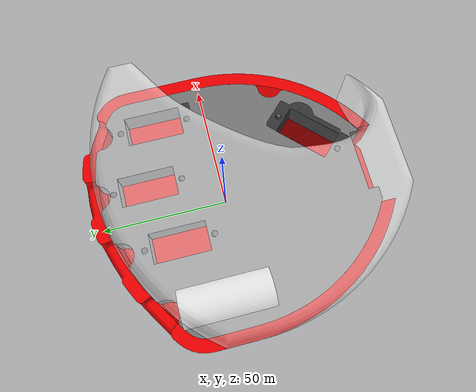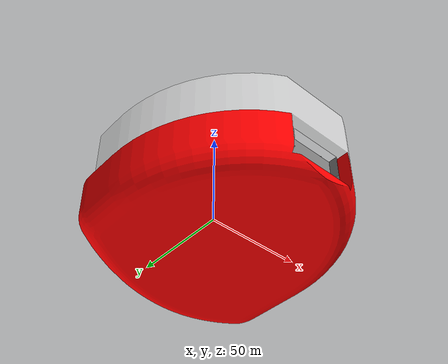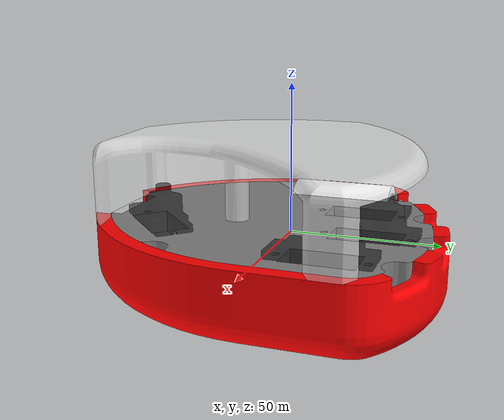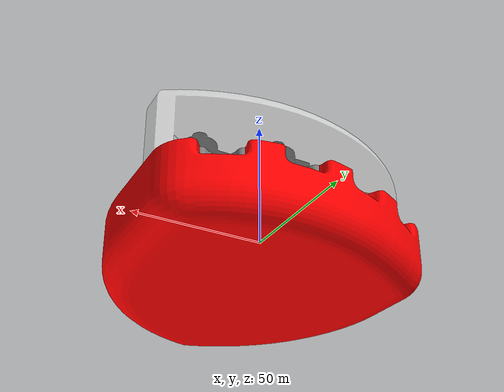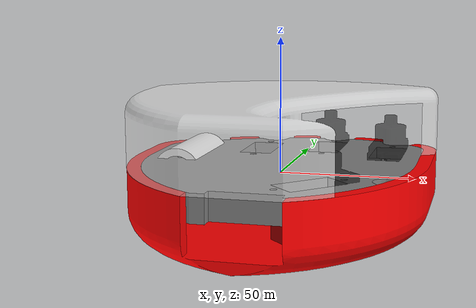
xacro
<?xml version="1.0"?>
<robot xmlns:xacro="http://www.ros.org/wiki/xacro" name="hands_one">

  <xacro:include filename="$(find hands_one)/urdf/finger_hands_one.xacro"/>
  <xacro:little_finger name="little_finger" parent="PalmMid_link" xyz="-37.5 8.75 0" rpy="0 0 0"/>

  <!-- Palm Mid link -->
  <link name="PalmMid_link">
    <visual>
      <geometry>
        <mesh filename="package://hands_one/meshes/PalmMid.stl" scale="1 1 1"/>
      </geometry>
      <material name="gray">
        <color rgba="0.5 0.5 0.5 1"/>
      </material>
    </visual>
    <collision>
      <geometry>
        <mesh filename="package://hands_one/meshes/PalmMid.stl" scale="1 1 1"/>
      </geometry>
    </collision>
    <inertial>
      <mass value="0.5"/>
      <origin xyz="0 0 0" rpy="0 0 0"/>
      <inertia ixx="0.001" ixy="0" ixz="0" iyy="0.001" iyz="0" izz="0.001"/>
    </inertial>
  </link>

  <!-- Palm Back link -->
  <link name="PalmBackCover_link">
    <visual>
      <geometry>
        <mesh filename="package://hands_one/meshes/PalmBackCoverUpdated.stl" scale="1 1 1"/>
      </geometry>
      <material name="red">
        <color rgba="1 0 0 1"/>
      </material>
    </visual>
    <collision>
      <geometry>
        <mesh filename="package://hands_one/meshes/PalmBackCoverUpdated.stl" scale="1 1 1"/>
      </geometry>
    </collision>
    <inertial>
      <mass value="0.1"/>
      <origin xyz="0 0 0" rpy="0 0 0"/>
      <inertia ixx="0.0001" ixy="0" ixz="0" iyy="0.0001" iyz="0" izz="0.0001"/>
    </inertial>
  </link>

  <!-- Palm Front link -->
  <link name="PalmFrontCover_link">
    <visual>
      <geometry>
        <mesh filename="package://hands_one/meshes/PalmFrontCover.stl" scale="1 1 1"/>
      </geometry>
      <material name="white">
        <color rgba="1 1 1 0.5"/>
      </material>
    </visual>
    <collision>
      <geometry>
        <mesh filename="package://hands_one/meshes/PalmFrontCover.stl" scale="1 1 1"/>
      </geometry>
    </collision>
    <inertial>
      <mass value="0.1"/>
      <origin xyz="0 0 0" rpy="0 0 0"/>
      <inertia ixx="0.0001" ixy="0" ixz="0" iyy="0.0001" iyz="0" izz="0.0001"/>
    </inertial>
  </link>

  <!-- Little Finger Servo -->
  <link name="LittleServo_link">
    <visual>
      <geometry>
        <mesh filename="package://hands_one/meshes/servo.stl" scale="1 1 1"/>
      </geometry>
      <material name="black">
        <color rgba="0 0 0 0.5"/>
      </material>
    </visual>
    <collision>
      <geometry>
        <mesh filename="package://hands_one/meshes/servo.stl" scale="1 1 1"/>
      </geometry>
    </collision>
    <inertial>
      <mass value="0.1"/>
      <origin xyz="0 0 0" rpy="0 0 0"/>
      <inertia ixx="0.0001" ixy="0" ixz="0" iyy="0.0001" iyz="0" izz="0.0001"/>
    </inertial>
  </link>

  <!-- Ring Finger Servo -->
  <link name="RingServo_link">
    <visual>
      <geometry>
        <mesh filename="package://hands_one/meshes/servo.stl" scale="1 1 1"/>
      </geometry>
      <material name="black">
        <color rgba="0 0 0 0.5"/>
      </material>
    </visual>
    <collision>
      <geometry>
        <mesh filename="package://hands_one/meshes/servo.stl" scale="1 1 1"/>
      </geometry>
    </collision>
    <inertial>
      <mass value="0.1"/>
      <origin xyz="0 0 0" rpy="0 0 0"/>
      <inertia ixx="0.0001" ixy="0" ixz="0" iyy="0.0001" iyz="0" izz="0.0001"/>
    </inertial>
  </link>

  <!-- Middle Finger Servo -->
  <link name="MiddleServo_link">
    <visual>
      <geometry>
        <mesh filename="package://hands_one/meshes/servo.stl" scale="1 1 1"/>
      </geometry>
      <material name="black">
        <color rgba="0 0 0 0.5"/>
      </material>
    </visual>
    <collision>
      <geometry>
        <mesh filename="package://hands_one/meshes/servo.stl" scale="1 1 1"/>
      </geometry>
    </collision>
    <inertial>
      <mass value="0.1"/>
      <origin xyz="0 0 0" rpy="0 0 0"/>
      <inertia ixx="0.0001" ixy="0" ixz="0" iyy="0.0001" iyz="0" izz="0.0001"/>
    </inertial>
  </link>

  <!-- Index Finger Servo -->
  <link name="IndexServo_link">
    <visual>
      <geometry>
        <mesh filename="package://hands_one/meshes/servo.stl" scale="1 1 1"/>
      </geometry>
      <material name="black">
        <color rgba="0 0 0 0.5"/>
      </material>
    </visual>
    <collision>
      <geometry>
        <mesh filename="package://hands_one/meshes/servo.stl" scale="1 1 1"/>
      </geometry>
    </collision>
    <inertial>
      <mass value="0.1"/>
      <origin xyz="0 0 0" rpy="0 0 0"/>
      <inertia ixx="0.0001" ixy="0" ixz="0" iyy="0.0001" iyz="0" izz="0.0001"/>
    </inertial>
  </link>

  <!-- Thumb Servo -->
  <link name="ThumbServo_link">
    <visual>
      <geometry>
        <mesh filename="package://hands_one/meshes/servo.stl" scale="1 1 1"/>
      </geometry>
      <material name="black">
        <color rgba="0 0 0 0.5"/>
      </material>
    </visual>
    <collision>
      <geometry>
        <mesh filename="package://hands_one/meshes/servo.stl" scale="1 1 1"/>
      </geometry>
    </collision>
    <inertial>
      <mass value="0.1"/>
      <origin xyz="0 0 0" rpy="0 0 0"/>
      <inertia ixx="0.0001" ixy="0" ixz="0" iyy="0.0001" iyz="0" izz="0.0001"/>
    </inertial>
  </link>

  <!-- Joint connecting PalmBackCover to PalmMid -->
  <joint name="PalmBack_joint" type="fixed">
    <parent link="PalmMid_link"/>
    <child link="PalmBackCover_link"/>
    <origin xyz="0 -5.0 -7.5" rpy="0 0 0"/>
  </joint>

  <!-- Joint connecting PalmFrontCover to PalmMid -->
  <joint name="PalmFront_joint" type="fixed">
    <parent link="PalmMid_link"/>
    <child link="PalmFrontCover_link"/>
    <origin xyz="0 -5.0 17.5" rpy="0 0 0"/>
  </joint>

  <!-- Joint connecting LittleFingerServo to PalmMid -->
  <joint name="LittleServo_joint" type="fixed">
    <parent link="PalmMid_link"/>
    <child link="LittleServo_link"/>
    <origin xyz="-37.5 8.75 -2.0" rpy="1.5708 0 1.5708"/>
  </joint>

  <!-- Joint connecting RingFingerServo to PalmMid -->
  <joint name="RingServo_joint" type="fixed">
    <parent link="PalmMid_link"/>
    <child link="RingServo_link"/>
    <origin xyz="-12.5 21.25 -2.0" rpy="1.5708 0 1.5708"/>
  </joint>

  <!-- Joint connecting MiddleFingerServo to PalmMid -->
  <joint name="MiddleServo_joint" type="fixed">
    <parent link="PalmMid_link"/>
    <child link="MiddleServo_link"/>
    <origin xyz="12.5 28.75 -2.0" rpy="1.5708 0 1.5708"/>
  </joint>

  <!-- Joint connecting IndexFingerServo to PalmMid -->
  <joint name="IndexServo_joint" type="fixed">
    <parent link="PalmMid_link"/>
    <child link="IndexServo_link"/>
    <origin xyz="37.5 21.25 -2.0" rpy="1.5708 0 1.5708"/>
  </joint>

  <!-- Joint connecting ThumbFingerServo to PalmMid -->
  <joint name="ThumbServo_joint" type="fixed">
    <parent link="PalmMid_link"/>
    <child link="ThumbServo_link"/>
    <origin xyz="19.24 -39.31 -2.0" rpy="1.5708 0 0.7854"/>
  </joint>

</robot>

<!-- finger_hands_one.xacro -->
<robot xmlns:xacro="http://www.ros.org/wiki/xacro" name="little_finger">

  <xacro:macro name="little_finger" params="name parent xyz rpy">
    <link name="$little_proximal_link">
      <visual>
        <geometry>
          <mesh filename="package://hands_one/meshes/LittleProximalUpdated.stl" scale="1 1 1"/>
        </geometry>
        <material name="white">
          <color rgba="1 1 1 1"/>
        </material>
      </visual>
      <collision>
        <geometry>
          <mesh filename="package://hands_one/meshes/LittleProximalUpdated.stl" scale="1 1 1"/>
        </geometry>
      </collision>
      <inertial>
        <mass value="0.1"/>
        <origin xyz="0 0 0"/>
        <inertia ixx="0.001" ixy="0" ixz="0" iyy="0.001" iyz="0" izz="0.001"/>
      </inertial>
    </link>

    <joint name="$little_proximal_joint" type="revolute">
      <parent link="${parent}"/>
      <child link="$little_proximal_link"/>
      <origin xyz="${xyz}" rpy="${rpy}"/>
      <axis xyz="0 1 0"/>
      <limit lower="0" upper="1.57" effort="1" velocity="1"/>
    </joint>
  </xacro:macro>

</robot>
